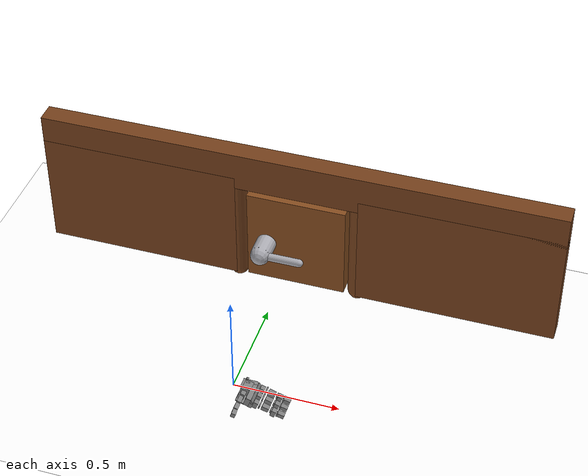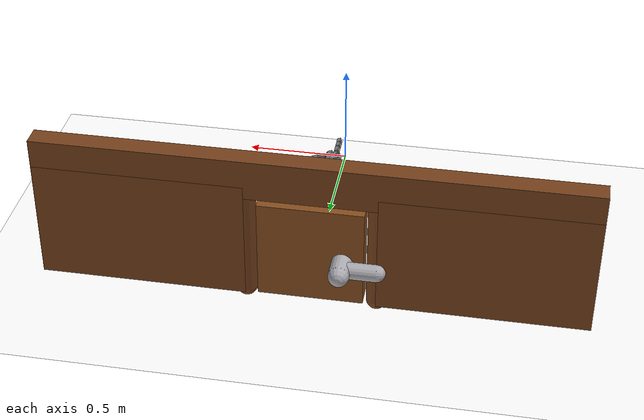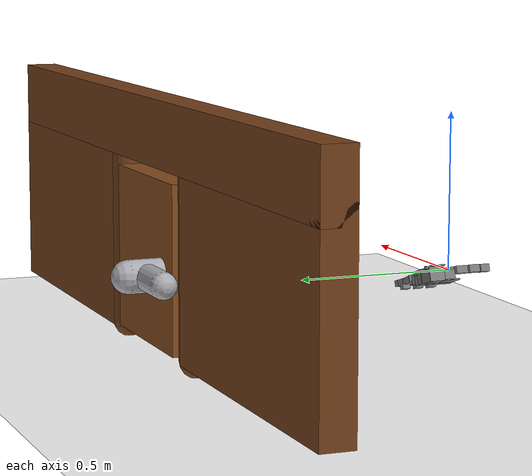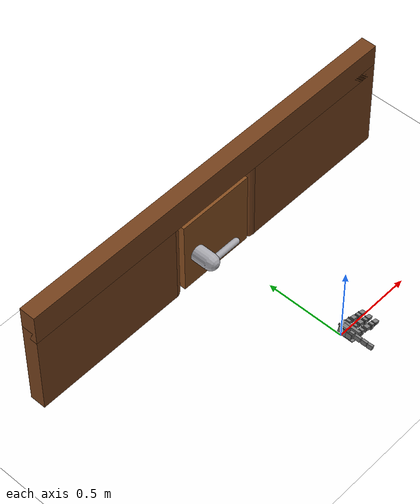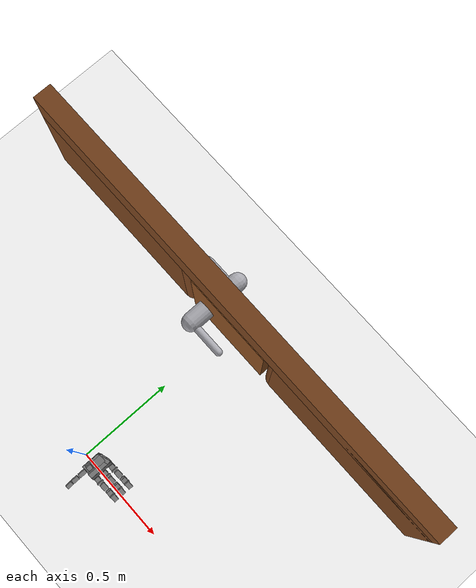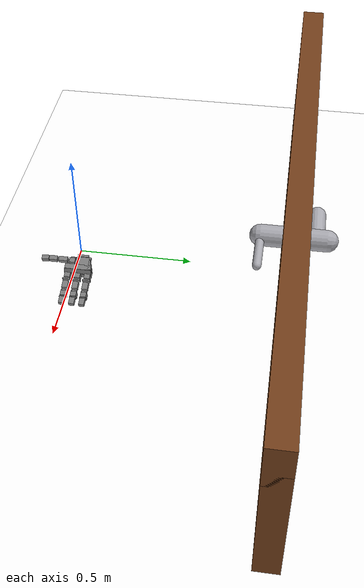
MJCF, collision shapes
<mujoco model="leap_scene">
  <option>
    <flag gravity="disable"/>
  </option>
  <include file="leap_rh_mjx.xml"/>
  <include file="door.xml"/>

  <statistic center="0.15 0 0" extent="0.4" meansize="0.01"/>

  <visual>
    <headlight diffuse=".8 .8 .8" ambient=".2 .2 .2" specular="1 1 1"/>
    <rgba force="1 0 0 1"/>
    <global azimuth="120" elevation="-20"/>
    <map force="0.01" stiffness="500"/>
    <scale forcewidth="0.1" contactwidth="0.5" contactheight="0.2"/>
    <quality shadowsize="8192"/>
  </visual>

  <asset>
    <texture type="skybox" builtin="gradient" rgb1="1 1 1" rgb2="1 1 1" width="800" height="800"/>
    <texture type="2d" name="groundplane" builtin="checker" mark="edge" rgb1="1 1 1" rgb2="1 1 1" markrgb="0 0 0"
      width="300" height="300"/>
    <material name="groundplane" texture="groundplane" texuniform="true" texrepeat="5 5" reflectance="0"/>
  </asset>

  <worldbody>
    <camera name="side" pos="-0.183 0.396 0.296" xyaxes="-0.783 -0.622 -0.000 0.332 -0.419 0.845"/>
    <geom name="floor" pos="0 0 -0.25" size="0 0 0.01" type="plane" material="groundplane" contype="2" conaffinity="2"/>
  </worldbody>

  <sensor>
    <!-- hand. -->
    <framepos name="palm_position" objtype="site" objname="grasp_site"/>
    <framepos name="th_tip_position" objtype="site" objname="th_tip" reftype="site" refname="grasp_site"/>
    <framepos name="if_tip_position" objtype="site" objname="if_tip" reftype="site" refname="grasp_site"/>
    <framepos name="mf_tip_position" objtype="site" objname="mf_tip" reftype="site" refname="grasp_site"/>
    <framepos name="rf_tip_position" objtype="site" objname="rf_tip" reftype="site" refname="grasp_site"/>

  </sensor>

  <keyframe>
    <key name="home"
      qpos="
      0.0 0.0 0.0 0.0 0.0
      0.8 0 0.8 0.8
      0.8 0 0.8 0.8
      0.8 0 0.8 0.8
      0.8 0.8 0.8 0
      0.0 0.0"
      ctrl="
      0.0 0.0 0.0 0.0 0.0
      0.8 0 0.8 0.8
      0.8 0 0.8 0.8
      0.8 0 0.8 0.8
      0.8 0.8 0.8 0"/>
  </keyframe>
</mujoco>

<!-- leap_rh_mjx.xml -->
<mujoco model="leap_rh">
  <compiler angle="radian" autolimits="true"/>

  <option timestep="0.01" integrator="Euler" iterations="5" ls_iterations="8">
    <flag eulerdamp="disable"/>
  </option>

  <custom>
    <numeric data="30" name="max_contact_points"/>
    <numeric data="12" name="max_geom_pairs"/>
  </custom>

  <asset>
    <material name="black" rgba="0.2 0.2 0.2 1"/>
    <material name="gray" rgba="0.5 0.5 0.5 1"/>
    <mesh name="leap_mount" file="meshes/leap_mount.obj"/>

    <mesh name="palm" file="../../../../external_deps/mujoco_menagerie/leap_hand/assets/palm_right.obj"/>
    <mesh name="base" file="../../../../external_deps/mujoco_menagerie/leap_hand/assets/base.obj"/>
    <mesh name="proximal" file="../../../../external_deps/mujoco_menagerie/leap_hand/assets/proximal.obj"/>
    <mesh name="medial" file="../../../../external_deps/mujoco_menagerie/leap_hand/assets/medial.obj"/>
    <mesh name="distal" file="../../../../external_deps/mujoco_menagerie/leap_hand/assets/distal.obj"/>
    <mesh name="tip" file="../../../../external_deps/mujoco_menagerie/leap_hand/assets/tip.obj"/>
    <mesh name="thumb_base" file="../../../../external_deps/mujoco_menagerie/leap_hand/assets/thumb_base.obj"/>
    <mesh name="thumb_proximal" file="../../../../external_deps/mujoco_menagerie/leap_hand/assets/thumb_proximal.obj"/>
    <mesh name="thumb_distal" file="../../../../external_deps/mujoco_menagerie/leap_hand/assets/thumb_distal.obj"/>
    <mesh name="thumb_tip" file="../../../../external_deps/mujoco_menagerie/leap_hand/assets/thumb_tip.obj"/>
  </asset>

  <default>
    <default class="leap_rh">
      <geom group="3" friction="0.2" solref="0.02 1.5" solimp="0.9 0.99 0.001"/>
      <default class="visual">
        <geom group="2" type="mesh" contype="0" conaffinity="0" density="0" material="black"/>
      </default>
      <default class="tip">
        <geom size="0.01 0.012 0.016" pos="-0.0012969 -0.0335524 0.0145207" quat="0.703552 0.709596 -0.0292107 -0.0252203" type="box" friction="0.7 0.05 0.0002" rgba=".5 .5 .5 .3"/>
      </default>
      <default class="thumb_tip">
        <geom size="0.01 0.012 0.016" pos="-0.00127744 -0.0455619 -0.0144774" quat="0.708101 0.705072 -0.0294902 -0.024426" type="box" friction="0.7 0.05 0.0002" rgba=".5 .5 .5 .3"/>
      </default>

      <position kp="3.0" inheritrange="1"/>
      <!-- armature = rotor inertia * gear ratio^2 = 1.7 * 1e-8 * 288*288 = 0.00149376 -->
      <!-- max torque = 0.2196 = 600/1000*0.366 -->
      <!-- frictionloss = rough guess, small ish value -->
      <joint axis="0 0 -1" damping="0.2" armature="0.00149376" actuatorfrcrange="-0.2196 0.2196" frictionloss="0.02"/>

      <default class="mcp">
        <joint range="-0.314 2.23"/>
      </default>
      <default class="rot">
        <joint range="-1.047 1.047"/>
      </default>
      <default class="pip">
        <joint range="-0.506 1.885"/>
      </default>
      <default class="dip">
        <joint range="-0.366 2.042"/>
      </default>
      <default class="thumb_cmc">
        <joint range="-0.349 2.094"/>
      </default>
      <default class="thumb_axl">
        <joint range="-0.349 2.094"/>
      </default>
      <default class="thumb_mcp">
        <joint range="-0.47 2.443"/>
      </default>
      <default class="thumb_ipl">
        <joint range="-1.34 1.88"/>
      </default>

    </default>
  </default>

  <contact>
    <!-- filter the palm from all other finger bodies except the tips -->
    <exclude body1="palm" body2="if_bs"/>
    <exclude body1="palm" body2="mf_bs"/>
    <exclude body1="palm" body2="rf_bs"/>
    <exclude body1="palm" body2="th_mp"/>

    <exclude body1="palm" body2="if_px"/>
    <exclude body1="palm" body2="mf_px"/>
    <exclude body1="palm" body2="rf_px"/>
    <exclude body1="palm" body2="th_bs"/>

    <exclude body1="palm" body2="if_md"/>
    <exclude body1="palm" body2="mf_md"/>
    <exclude body1="palm" body2="rf_md"/>
    <exclude body1="palm" body2="th_px"/>

    <!-- filter the mount from all finger bodies except the tips -->
    <exclude body1="leap_mount" body2="if_bs"/>
    <exclude body1="leap_mount" body2="mf_bs"/>
    <exclude body1="leap_mount" body2="rf_bs"/>
    <exclude body1="leap_mount" body2="th_mp"/>

    <exclude body1="leap_mount" body2="if_px"/>
    <exclude body1="leap_mount" body2="mf_px"/>
    <exclude body1="leap_mount" body2="rf_px"/>
    <exclude body1="leap_mount" body2="th_bs"/>

    <exclude body1="leap_mount" body2="if_md"/>
    <exclude body1="leap_mount" body2="mf_md"/>
    <exclude body1="leap_mount" body2="rf_md"/>
    <exclude body1="leap_mount" body2="th_px"/>

    <!-- none of the base fingertip geoms can touch each other -->
    <exclude body1="if_bs" body2="mf_bs"/>
    <exclude body1="if_bs" body2="rf_bs"/>
    <exclude body1="mf_bs" body2="rf_bs"/>

    <exclude body1="th_mp" body2="if_bs"/>
    <exclude body1="th_mp" body2="mf_bs"/>
    <exclude body1="th_mp" body2="rf_bs"/>
  </contact>

  <worldbody>
    <light name="spotlight" mode="targetbodycom" target="palm" pos="3 0 4"/>
    <body name="leap_mount" pos="0 0 0" quat="1 0 0 0" childclass="leap_rh">
      <geom name="leap_mount_visual" pos="0 0 0" quat="1 0 0 0" class="visual" mesh="leap_mount"/>
      <geom name="leap_mount_collision_0" size="0.002 0.025 0.005" pos="0.0405 0.02 0.009"
        quat="0.57346234 0 0.81923192 0" type="box"/>
      <geom name="leap_mount_collision_1" size="0.005 0.005 0.005" pos="0.05 0.053 0.002"
        quat="0.4987168 0.64994038 -0.34910175 0.45495826" type="box"/>
      <site name="grasp_site" pos="0.11 0.0 0.03" group="4"/>
      <body name="palm" pos="0.124 -0.0305 -0.06045" quat="0 1 0 -0.175">
        <inertial pos="-0.049542 -0.042914 -0.010227" quat="0.565586 0.427629 -0.574956 0.408254" mass="0.237"
          diaginertia="0.000407345 0.000304759 0.000180736"/>
        <geom name="palm_visual" pos="-0.02 0.02575 -0.0347" quat="1 0 0 0" class="visual" mesh="palm"/>
        <geom name="palm_collision_1" size="0.011 0.013 0.017" pos="-0.009 0.008 -0.011" type="box"/>
        <geom name="palm_collision_2" size="0.011 0.013 0.017" pos="-0.009 -0.037 -0.011" type="box"/>
        <geom name="palm_collision_3" size="0.011 0.013 0.017" pos="-0.009 -0.082 -0.011" type="box"/>
        <geom name="palm_collision_4" size="0.029 0.01 0.023" pos="-0.066 -0.078 -0.0115" quat="0.989016 0 0 -0.147806" type="box"/>
        <geom name="palm_collision_5" size="0.01 0.06 0.015" pos="-0.03 -0.035 -0.003" type="box"/>
        <geom name="palm_collision_6" size="0.005 0.06 0.01" pos="-0.032 -0.035 -0.024" quat="0.923956 0 0.382499 0" type="box"/>
        <geom name="palm_collision_7" size="0.012 0.058 0.023" pos="-0.048 -0.033 -0.0115" type="box"/>
        <geom name="palm_collision_8" size="0.022 0.026 0.023" pos="-0.078 -0.053 -0.0115" type="box"/>
        <geom name="palm_collision_9" size="0.002 0.018 0.017" pos="-0.098 -0.009 -0.006" type="box"/>
        <geom name="palm_collision_10" size="0.022 0.028 0.002" pos="-0.078 -0.003 0.01" type="box"/>
        <body name="if_bs" pos="-0.007 0.023 -0.0187" quat="0.5 0.5 0.5 -0.5">
          <inertial pos="-0.022516 0.033882 0.016359" quat="0.388092 0.677951 -0.247713 0.573067" mass="0.044"
            diaginertia="1.74972e-05 1.61504e-05 7.21342e-06"/>
          <joint name="if_mcp" class="mcp"/>
          <geom name="if_bs_visual" pos="0.0084 0.0077 0.01465" quat="1 0 0 0" class="visual" mesh="base"/>
          <geom name="if_bs_collision_1" size="0.01 0.003 0.017" pos="0 0.018 0.0147" type="box"/>
          <body name="if_px" pos="-0.0122 0.0381 0.0145" quat="0.500003 -0.5 -0.499997 0.5">
            <inertial pos="0.0075 -0.0002 -0.011" quat="0 0.707107 0 0.707107" mass="0.032"
              diaginertia="4.8853e-06 4.3733e-06 3.0933e-06"/>
            <joint name="if_rot" class="rot"/>
            <geom name="if_px_visual" pos="0.0096 0.0002 0.0007" quat="0.500003 -0.5 -0.5 -0.499997" class="visual"
              mesh="proximal"/>
            <geom name="if_px_collision" size="0.017 0.013 0.011" pos="0.0075 -0.0002 -0.011" type="box"/>

            <body name="if_md" pos="0.015 0.0143 -0.013" quat="0.500003 0.5 -0.5 0.499997">
              <inertial pos="0.0054215 -0.029148 0.015" quat="0.687228 0.687228 0.166487 0.166487" mass="0.037"
                diaginertia="8.28004e-06 8.1598e-06 5.39516e-06"/>
              <joint name="if_pip" class="pip"/>
              <geom name="if_md_visual" pos="0.0211 -0.0084 0.0097" quat="2.67949e-08 -1 0 0" class="visual"
                mesh="medial"/>
              <geom name="if_md_collision_1" size="0.008 0.003 0.013" pos="0 -0.02 0.015" type="box"/>
              <geom name="if_md_collision_5" size="0.017 0.011 0.013" pos="0.0075 -0.035 0.015" type="box"/>
              <body name="if_ds" pos="0 -0.0361 0.0002">
                <inertial pos="-0.0008794 -0.027019 0.014594" quat="0.702905 0.710643 -0.0212937 -0.0214203"
                  mass="0.016" diaginertia="3.71863e-06 3.02396e-06 1.6518e-06"/>
                <joint name="if_dip" class="dip"/>
                <geom name="if_ds_visual" pos="0.0132 -0.0061 0.0144" quat="2.67949e-08 1 0 0" class="visual"
                  mesh="distal"/>
                <geom name="if_ds_collision_1" size="0.01 0.003 0.015" pos="0 -0.017 0.015" type="box"/>
                <geom name="if_tip" class="tip"/>
                <geom type="mesh" mesh="tip" class="visual" material="gray"/>
                <site name="if_tip" pos="0 -0.05 0.015" group="4"/>
              </body>
            </body>
          </body>
        </body>
        <body name="mf_bs" pos="-0.0071 -0.0224 -0.0187" quat="0.500003 0.5 0.5 -0.499997">
          <inertial pos="-0.022516 0.033882 0.016359" quat="0.388092 0.677951 -0.247713 0.573067" mass="0.044"
            diaginertia="1.74972e-05 1.61504e-05 7.21342e-06"/>
          <joint name="mf_mcp" class="mcp"/>
          <geom name="mf_bs_visual" pos="0.0084 0.0077 0.01465" quat="1 0 0 0" class="visual" mesh="base"/>
          <geom name="mf_bs_collision_1" size="0.01 0.003 0.017" pos="0 0.018 0.0147" type="box"/>
          <body name="mf_px" pos="-0.0122 0.0381 0.0145" quat="0.500003 -0.5 -0.499997 0.5">
            <inertial pos="0.0075 -0.0002 -0.011" quat="0 0.707107 0 0.707107" mass="0.032"
              diaginertia="4.8853e-06 4.3733e-06 3.0933e-06"/>
            <joint name="mf_rot" class="rot"/>
            <geom name="mf_px_visual" pos="0.0096 0.0003 0.0007" quat="0.500003 -0.5 -0.5 -0.499997" class="visual"
              mesh="proximal"/>
            <geom name="mf_px_collision" size="0.017 0.013 0.011" pos="0.0075 -0.0002 -0.011" type="box"/>
            <body name="mf_md" pos="0.015 0.0143 -0.013" quat="0.500003 0.5 -0.5 0.499997">
              <inertial pos="0.0054215 -0.029148 0.015" quat="0.687228 0.687228 0.166487 0.166487" mass="0.037"
                diaginertia="8.28004e-06 8.1598e-06 5.39516e-06"/>
              <joint name="mf_pip" class="pip"/>
              <geom name="mf_md_visual" pos="0.0211 -0.0084 0.0097" quat="1.32679e-06 -1 0 0" class="visual"
                mesh="medial"/>
              <geom name="mf_md_collision_1" size="0.008 0.003 0.013" pos="0 -0.02 0.015" type="box"/>
              <geom name="mf_md_collision_5" size="0.017 0.011 0.013" pos="0.0075 -0.035 0.015" type="box"/>
              <body name="mf_ds" pos="0 -0.0361 0.0002">
                <inertial pos="-0.0008794 -0.027019 0.014594" quat="0.702905 0.710643 -0.0212937 -0.0214203"
                  mass="0.016" diaginertia="3.71863e-06 3.02396e-06 1.6518e-06"/>
                <joint name="mf_dip" class="dip"/>
                <geom name="mf_ds_visual" pos="0.0132 -0.0061 0.0145" quat="1.32679e-06 1 0 0" class="visual"
                  mesh="distal"/>
                <geom name="mf_ds_collision_1" size="0.01 0.003 0.015" pos="0 -0.017 0.015" type="box"/>
                <geom name="mf_tip" class="tip"/>
                <geom type="mesh" mesh="tip" class="visual" material="gray"/>
                <site name="mf_tip" pos="0 -0.05 0.015" group="4"/>
              </body>
            </body>
          </body>
        </body>
        <body name="rf_bs" pos="-0.00709 -0.0678 -0.0187" quat="0.500003 0.5 0.5 -0.499997">
          <inertial pos="-0.022516 0.033882 0.016359" quat="0.388092 0.677951 -0.247713 0.573067" mass="0.044"
            diaginertia="1.74972e-05 1.61504e-05 7.21342e-06"/>
          <joint name="rf_mcp" class="mcp"/>
          <geom name="rf_bs_visual" pos="0.0084 0.0077 0.01465" quat="1 0 0 0" class="visual" mesh="base"/>
          <geom name="rf_bs_collision_1" size="0.01 0.003 0.017" pos="0 0.018 0.0147" type="box"/>
          <body name="rf_px" pos="-0.0122 0.0381 0.0145" quat="0.500003 -0.5 -0.499997 0.5">
            <inertial pos="0.0075 -0.0002 -0.011" quat="0 0.707107 0 0.707107" mass="0.032"
              diaginertia="4.8853e-06 4.3733e-06 3.0933e-06"/>
            <joint name="rf_rot" class="rot"/>
            <geom name="rf_px_visual" pos="0.0096 0.0003 0.0007" quat="0.500003 -0.5 -0.5 -0.499997" class="visual"
              mesh="proximal"/>
            <geom name="rf_px_collision" size="0.017 0.013 0.011" pos="0.0075 -0.0002 -0.011" type="box"/>
            <body name="rf_md" pos="0.015 0.0143 -0.013" quat="0.500003 0.5 -0.5 0.499997">
              <inertial pos="0.0054215 -0.029148 0.015" quat="0.687228 0.687228 0.166487 0.166487" mass="0.037"
                diaginertia="8.28004e-06 8.1598e-06 5.39516e-06"/>
              <joint name="rf_pip" class="pip"/>
              <geom name="rf_md_visual" pos="0.0211 -0.0084 0.0097" quat="0 -1 0 0" class="visual" mesh="medial"/>
              <geom name="rf_md_collision_1" size="0.008 0.003 0.013" pos="0 -0.02 0.015" type="box"/>
              <geom name="rf_md_collision_5" size="0.017 0.011 0.013" pos="0.0075 -0.035 0.015" type="box"/>
              <body name="rf_ds" pos="0 -0.03609 0.0002">
                <inertial pos="-0.0008794 -0.027019 0.014594" quat="0.702905 0.710643 -0.0212937 -0.0214203"
                  mass="0.016" diaginertia="3.71863e-06 3.02396e-06 1.6518e-06"/>
                <joint name="rf_dip" class="dip"/>
                <geom name="rf_ds_visual" pos="0.0132 -0.0061 0.0145" quat="0 1 0 0" class="visual" mesh="distal"/>
                <geom name="rf_ds_collision_1" size="0.01 0.003 0.015" pos="0 -0.017 0.015" type="box"/>
                <geom name="rf_tip" class="tip"/>
                <geom type="mesh" mesh="tip" class="visual" material="gray"/>
                <site name="rf_tip" pos="0 -0.05 0.015" group="4"/>
              </body>
            </body>
          </body>
        </body>
        <body name="th_mp" pos="-0.0693 -0.0012 -0.0216" quat="0.707109 0 0.707105 0">
          <inertial pos="0.0075 -0.0002 -0.011" quat="0 0.707107 0 0.707107" mass="0.032"
            diaginertia="4.8853e-06 4.3733e-06 3.0933e-06"/>
          <joint name="th_cmc" class="thumb_cmc"/>
          <geom name="th_mp_visual" pos="-0.0053 0.0003 0.00078" quat="0.500003 -0.5 -0.5 -0.499997" class="visual"
            mesh="proximal"/>
          <geom name="th_mp_collision" size="0.017 0.013 0.011" pos="-0.0075 -0.0002 -0.011" type="box"/>
          <body name="th_bs" pos="0 0.0143 -0.013" quat="0.500003 0.5 -0.5 0.499997">
            <inertial pos="0 0 -0.0070806" quat="0.707107 0.707107 0 0" mass="0.003"
              diaginertia="6.1932e-07 5.351e-07 2.1516e-07"/>
            <joint name="th_axl" class="thumb_axl"/>
            <geom name="th_bs_collision_1" pos="0.01196 0 -0.0158" quat="0.707109 0.707105 0 0" class="visual" mesh="thumb_base"/>
            <body name="th_px" pos="0 0.0145 -0.017" quat="0.707109 -0.707105 0 0">
              <inertial pos="-0.0020593 0.015912 -0.013733" quat="0.698518 0.697382 -0.104933 0.121324" mass="0.038"
                diaginertia="9.87104e-06 9.32653e-06 4.36203e-06"/>
              <joint name="th_mcp" class="thumb_mcp"/>
              <geom name="th_px_visual" pos="0.0439 0.0579 -0.0086" quat="1 0 0 0" class="visual" mesh="thumb_proximal"/>
              <geom name="th_px_collision_1" size="0.01 0.02 0.012" pos="0 0.0105 -0.014" type="box"/>
              <body name="th_ds" pos="0 0.0466 0.0002" quat="1.32679e-06 0 0 1">
                <inertial pos="0.00096191 -0.024203 -0.014419" quat="0.35287 0.311272 -0.632839 0.614904" mass="0.049"
                  diaginertia="2.08591e-05 2.0402e-05 4.71335e-06"/>
                <joint name="th_ipl" class="thumb_ipl"/>
                <geom name="th_ds_visual" pos="0.0625 0.0784 0.0489" quat="1 0 0 0" class="visual" mesh="thumb_distal"/>
                <geom name="th_ds_collision_1" size="0.01 0.018 0.012" pos="0 -0.0085 -0.015" type="box"/>
                <geom name="th_tip" class="thumb_tip"/>
                <site name="th_tip" pos="0 -0.06 -0.015" group="4"/>
                <geom type="mesh" mesh="thumb_tip" class="visual" material="gray"/>
              </body>
            </body>
          </body>
        </body>
      </body>
    </body>
  </worldbody>

  <actuator>
    <position name="if_mcp_act" joint="if_mcp" class="mcp"/>
    <position name="if_rot_act" joint="if_rot" class="rot"/>
    <position name="if_pip_act" joint="if_pip" class="pip"/>
    <position name="if_dip_act" joint="if_dip" class="dip"/>
    <position name="mf_mcp_act" joint="mf_mcp" class="mcp"/>
    <position name="mf_rot_act" joint="mf_rot" class="rot"/>
    <position name="mf_pip_act" joint="mf_pip" class="pip"/>
    <position name="mf_dip_act" joint="mf_dip" class="dip"/>
    <position name="rf_mcp_act" joint="rf_mcp" class="mcp"/>
    <position name="rf_rot_act" joint="rf_rot" class="rot"/>
    <position name="rf_pip_act" joint="rf_pip" class="pip"/>
    <position name="rf_dip_act" joint="rf_dip" class="dip"/>
    <position name="th_cmc_act" joint="th_cmc" class="thumb_cmc"/>
    <position name="th_axl_act" joint="th_axl" class="thumb_axl"/>
    <position name="th_mcp_act" joint="th_mcp" class="thumb_mcp"/>
    <position name="th_ipl_act" joint="th_ipl" class="thumb_ipl"/>
  </actuator>
</mujoco>

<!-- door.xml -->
<mujoco>
  <default>
    <default class="cube">
      <geom friction=".3 0.05" conaffinity="2" condim="3"/>
    </default>
  </default>

  <asset>
    <texture name="cube" type="cube" fileup="reorientation_cube_textures/fileup.png"
      fileback="reorientation_cube_textures/fileback.png" filedown="reorientation_cube_textures/filedown.png"
      filefront="reorientation_cube_textures/filefront.png" fileleft="reorientation_cube_textures/fileleft.png"
      fileright="reorientation_cube_textures/fileright.png"/>
    <material name="cube" texture="cube"/>
    <texture name="graycube" type="cube" fileup="reorientation_cube_textures/grayup.png"
      fileback="reorientation_cube_textures/grayback.png" filedown="reorientation_cube_textures/graydown.png"
      filefront="reorientation_cube_textures/grayfront.png" fileleft="reorientation_cube_textures/grayleft.png"
      fileright="reorientation_cube_textures/grayright.png"/>
    <material name="graycube" texture="graycube"/>

    <!-- Door textures -->
    <texture type="cube" name="wood" file="resources/textures/wood.png" />
    <texture type="cube" name="foil" file="resources/textures/silverRaw.png" />
    <texture type="cube" name="woodb" file="resources/textures/woodb.png" />

    <!-- Materials for door -->
    <material name="MatFoil" texture="foil" specular="1" shininess="0.3" rgba="0.9 0.9 0.9 1"/>
    <material name="MatWood" texture="wood" texrepeat="3 3" specular="0.4" shininess="0.1" rgba="0.75 0.6 0.4 1"/>
    <material name="MatWoodB" texture="woodb" specular="1" shininess="0.3" rgba="0.65 0.5 0.35 1"/>
  </asset>

  <worldbody>
    <!-- Door frame and door (no table) -->

    <body name="frame" pos="-0.28 0.95 0.1" user="1001 0 2002 -0.4 -0.1 0.252 0 0.3 0.45">
      <inertial pos="0.29 0 0" quat="0.5 0.5 0.5 0.5" mass="7.85398" diaginertia="0.923301 0.764585 0.168533" />
      <geom size="0.50 0.05 0.30" pos="-0.52 0 0.04" type="box" material="MatWoodB"/>
      <geom size="0.05 0.3" pos="-0.02 0 0.05" type="capsule" material="MatWoodB"/>
      <geom size="0.05 0.3" pos="0.6 0 0.05" type="capsule" material="MatWoodB"/>
      <geom size="0.50 0.05 0.30" pos="1.1 0 0.04" type="box" material="MatWoodB"/>
      <geom size="1.31 0.05 0.10" pos="0.29 0 0.38" type="box" material="MatWoodB"/>
      <site name="S_handle_target" pos="0.75 -0.5 -.18" size="0.025" group='3'/>

      <!-- Hinged door leaf -->
      <body name="door" pos="0.29 0 0">
        <inertial pos="0.0296816 -0.00152345 0" quat="0.701072 0 0 0.713091" mass="2.43455" diaginertia="0.0913751 0.0521615 0.043714" />
        <joint name="door_hinge" pos="0.31 0 0" axis="0 0 1" range="0 1.57" damping="1" frictionloss="2" />
        <geom size="0.25 0.05 0.25" type="box" friction="1 1 1" material="MatWood" contype="1" conaffinity="1" />

        <!-- Door handle latch assembly -->
        <body name="latch" pos="-0.15 0 -0.025">
          <inertial pos="-0.017762 0.0138544 0" quat="0.365653 0.605347 -0.36522 0.605365" mass="3.53743" diaginertia="0.0483771 0.0410001 0.0111013" />
          <joint name="latch" pos="0 0 0" axis="0 1 0" range="0 1.8" frictionloss="5" />
          <geom size="0.05 0.15" quat="0.707388 0.706825 0 0" type="capsule" material="MatFoil" />
          <geom size="0.02 0.1" pos="0.1 -0.15 0" quat="0.707388 0 0.706825 0" type="capsule" material="MatFoil" />
          <geom size="0.04 0.07" pos="-0.1 0.1 0" quat="0.707388 0 0.706825 0" type="capsule" material="MatFoil" />
          <site name="S_handle" pos="0.15 -0.15 0" size="0.025" group='3'/>
        </body>
      </body>
    </body>
  </worldbody>
</mujoco>
